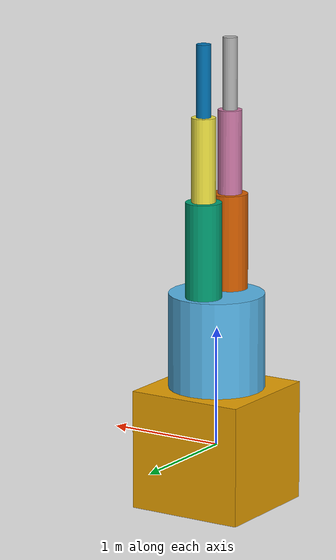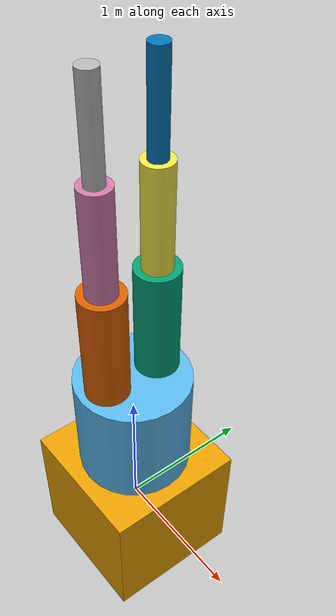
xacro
<?xml version="1.0" ?>

<robot name="farming_robot" xmlns:xacro="http://www.ros.org/wiki/xacro">
    <link name="base_link">
        <visual>
            <origin rpy="0 0 0" xyz="0 0 0"/>
            <geometry>
                <box size="1 1 1"/>
            </geometry>
        </visual>
    </link>

    <joint name="link_01" type="revolute">
        <axis xyz="0 0 1" />
        <limit effort="1000.0" lower="-3.14" upper="3.14" velocity="0.5" />
        <origin rpy="0 0 0" xyz="0 0 0.5"/>
        <parent link="base_link"/>
        <child link="link1"/>
    </joint>

    <link name="link1">
        <inertial>
            <origin xyz="0 0 0.5" rpy="0 0 0"/>
            <mass value="20"/>
            <inertia ixx="0"  ixy="0"  ixz="0" iyy="1.6" iyz="1.6" izz="1" />
        </inertial>
        <visual>
            <origin rpy="0 0 0" xyz="0 0 0.4"/>
            <geometry>
                <cylinder radius="0.4" length="0.8"/>
            </geometry>
        </visual>
        <collision>
            <origin xyz="0 0 0" rpy="0 0 0"/>
            <geometry>
                <cylinder radius="0.4" length="0.8"/>
            </geometry>
        </collision>
    </link>

    <joint name="link_12" type="revolute">
        <axis xyz="0 1 0" />
        <limit effort="1000.0" lower="0" upper="0.5" velocity="0.5" />
        <origin rpy="0 0 0" xyz="0 0.10 0.4"/>
        <parent link="link1"/>
        <child link="link2_1"/>
    </joint>

    <link name="link2_1">
        <inertial>
            <origin xyz="0 0 0.5" rpy="0 0 0"/>
            <mass value="10"/>
            <inertia ixx="0"  ixy="0"  ixz="0" iyy="0.1125" iyz="0.1125" izz="1" />
        </inertial>
        <visual>
            <origin rpy="0 0 0" xyz="0 0.1 0.8"/>
            <geometry>
                <cylinder radius="0.15" length="0.8"/>
            </geometry>
        </visual>
        <collision>
            <origin xyz="0 0 0" rpy="0 0 0"/>
            <geometry>
                <cylinder radius="0.15" length="0.8"/>
            </geometry>
        </collision>
    </link>

    <joint name="link_23" type="revolute">
        <axis xyz="0 1 0" />
        <limit effort="1000.0" lower="0" upper="0.75" velocity="0.5" />
        <origin rpy="0 0 0" xyz="0 0.10 0.35"/>
        <parent link="link2_1"/>
        <child link="link3_1"/>
    </joint>

    <link name="link3_1">
        <inertial>
            <origin xyz="0 0 0.5" rpy="0 0 0"/>
            <mass value="10"/>
            <inertia ixx="0"  ixy="0"  ixz="0" iyy="0.05" iyz="0.05" izz="1" />
        </inertial>
        <visual>
            <origin rpy="0 0 0" xyz="0 0 1.2"/>
            <geometry>
                <cylinder radius="0.10" length="0.7"/>
            </geometry>
        </visual>
        <collision>
            <origin xyz="0 0 0" rpy="0 0 0"/>
            <geometry>
                <cylinder radius="0.1" length="0.7"/>
            </geometry>
        </collision>
    </link>

   <joint name="link_34" type="revolute">
        <axis xyz="0 1 0" />
        <limit effort="1000.0" lower="0" upper="0.75" velocity="0.5" />
        <origin rpy="0 0 0" xyz="0 0 0.40"/>
        <parent link="link3_1"/>
        <child link="link4_1"/>
    </joint>

    <link name="link4_1">
        <inertial>
            <origin xyz="0 0 0.5" rpy="0 0 0"/>
            <mass value="10"/>
            <inertia ixx="0"  ixy="0"  ixz="0" iyy="0.018" iyz="0.018" izz="1" />
        </inertial>
        <visual>
            <origin rpy="0 0 0" xyz="0 0 1.45"/>
            <geometry>
                <cylinder radius="0.06" length="0.6"/>
            </geometry>
        </visual>
        <collision>
            <origin xyz="0 0 0" rpy="0 0 0"/>
            <geometry>
                <cylinder radius="0.06" length="0.6"/>
            </geometry>
        </collision>
    </link>

     <joint name="l_1_2" type="revolute">
        <axis xyz="0 -1 0" />
        <limit effort="1000.0" lower="0" upper="0.5" velocity="0.5" />
        <origin rpy="0 0 0" xyz="0 -0.10 0.4"/>
        <parent link="link1"/>
        <child link="l_22"/>
    </joint>

    <link name="l_22">
        <inertial>
            <origin xyz="0 0 0.5" rpy="0 0 0"/>
            <mass value="10"/>
            <inertia ixx="0"  ixy="0"  ixz="0" iyy="0.1125" iyz="0.1125" izz="100" />
        </inertial>
        <visual>
            <origin rpy="0 0 0" xyz="0 -0.1 0.8"/>
            <geometry>
                <cylinder radius="0.15" length="0.8"/>
            </geometry>
        </visual>
        <collision>
            <origin xyz="0 0 0" rpy="0 0 0"/>
            <geometry>
                <cylinder radius="0.15" length="0.8"/>
            </geometry>
        </collision>
    </link>

    <joint name="l_2_3" type="revolute">
        <axis xyz="0 -1 0" />
        <limit effort="1000.0" lower="0" upper="0.75" velocity="0.5" />
        <origin rpy="0 0 0" xyz="0 -0.10 0.35"/>
        <parent link="l_22"/>
        <child link="l_32"/>
    </joint>

    <link name="l_32">
        <inertial>
            <origin xyz="0 0 0.5" rpy="0 0 0"/>
            <mass value="10"/>
            <inertia ixx="0"  ixy="0"  ixz="0" iyy="0.05" iyz="0" izz="10" />
        </inertial>
        <visual>
            <origin rpy="0 0 0" xyz="0 0 1.2"/>
            <geometry>
                <cylinder radius="0.10" length="0.7"/>
            </geometry>
        </visual>
        <collision>
            <origin xyz="0 0 0" rpy="0 0 0"/>
            <geometry>
                <cylinder radius="0.10" length="0.7"/>
            </geometry>
        </collision>
    </link>

   <joint name="l_3_4" type="revolute">
        <axis xyz="0 -1 0" />
        <limit effort="1000.0" lower="0" upper="0.75" velocity="0.5" />
        <origin rpy="0 0 0" xyz="0 0 0.40"/>
        <parent link="l_32"/>
        <child link="l_42"/>
    </joint>

    <link name="l_42">
        <inertial>
            <origin xyz="0 0 0.5" rpy="0 0 0"/>
            <mass value="10"/>
            <inertia ixx="0"  ixy="0"  ixz="0" iyy="0.018" iyz="0.018" izz="1" />
        </inertial>
        <visual>
            <origin rpy="0 0 0" xyz="0 0 1.45"/>
            <geometry>
                <cylinder radius="0.06" length="0.6"/>
            </geometry>
        </visual>
        <collision>
            <origin xyz="0 0 0" rpy="0 0 0"/>
            <geometry>
                <cylinder radius="0.06" length="0.6"/>
            </geometry>
        </collision>
    </link>
</robot>
